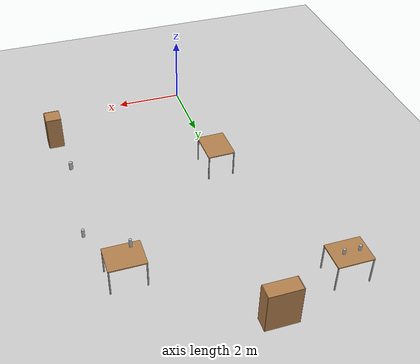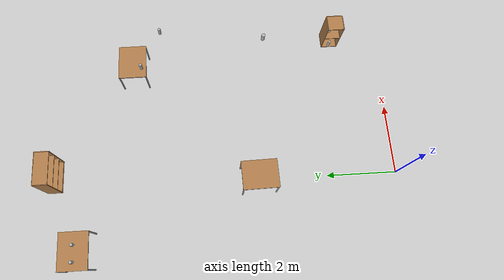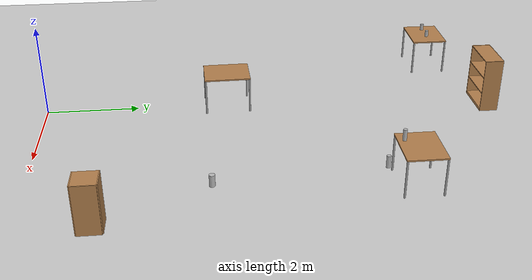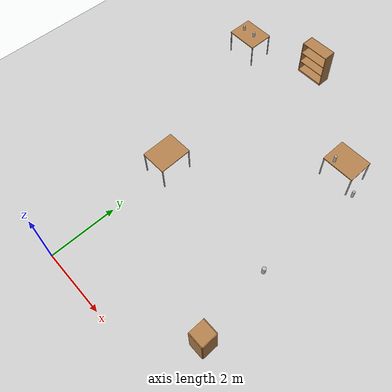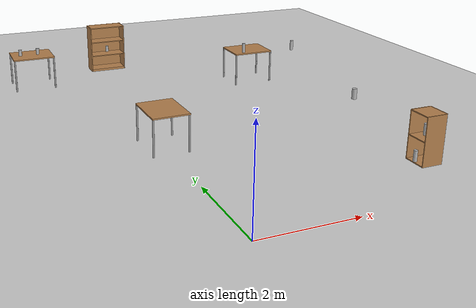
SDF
<sdf version="1.4">
 <world name="default">
  <physics type="ode">
   <gravity>0 0 -9.81</gravity>
   <ode>
    <solver><type>quick</type><iters>20</iters><sor>1</sor></solver>
    <constraints>
     <cfm>0</cfm>
     <erp>0.2</erp>
     <contact_max_correcting_vel>100</contact_max_correcting_vel>
     <contact_surface_layer>0</contact_surface_layer>
    </constraints>
   </ode>
   <real_time_update_rate>1000</real_time_update_rate>
   <max_step_size>0.001</max_step_size>
   <real_time_factor>1</real_time_factor>
  </physics>
  <light name="sun" type="directional">
   <pose>0 0 10 0 -0 0</pose>
   <diffuse>0.8 0.8 0.8 1</diffuse>
   <specular>0.2 0.2 0.2 1</specular>
   <attenuation>
    <range>1000</range>
    <constant>0.9</constant>
    <linear>0.01</linear>
    <quadratic>0.001</quadratic>
   </attenuation>
   <direction>-0.5 0.1 -0.9</direction>
  </light>
  <model name="ground_plane">
   <static>1</static>
   <link name="link">
    <collision name="collision">
     <geometry><plane><normal>0 0 1</normal><size>100 100</size></plane></geometry>
     <surface><friction><ode><mu>100</mu><mu2>50</mu2></ode></friction></surface>
    </collision>
    <visual name="visual">
     <cast_shadows>0</cast_shadows>
     <geometry><plane><normal>0 0 1</normal><size>100 100</size></plane></geometry>
     <material>
      <script><uri>file://media/materials/scripts/gazebo.material</uri><name>Gazebo/Grey</name></script>
     </material>
    </visual>
    <velocity_decay><linear>0</linear><angular>0</angular></velocity_decay>
   </link>
  </model>
  <scene><ambient>0.4 0.4 0.4 1</ambient><background>0.7 0.7 0.7 1</background><shadows>1</shadows></scene>
  <spherical_coordinates>
   <surface_model>EARTH_WGS84</surface_model>
   <latitude_deg>0</latitude_deg>
   <longitude_deg>0</longitude_deg>
   <elevation>0</elevation>
   <heading_deg>0</heading_deg>
  </spherical_coordinates>
  <model name="bookshelf">
   <static>1</static>
   <link name="link">
    <inertial><mass>1</mass></inertial>
    <collision name="back">
     <pose>0 0.005 0.6 0 -0 0</pose>
     <geometry><box><size>0.9 0.01 1.2</size></box></geometry>
    </collision>
    <visual name="visual1">
     <pose>0 0.005 0.6 0 -0 0</pose>
     <geometry><box><size>0.9 0.01 1.2</size></box></geometry>
     <material>
      <script><uri>file://media/materials/scripts/gazebo.material</uri><name>Gazebo/Wood</name></script>
     </material>
    </visual>
    <collision name="left_side">
     <pose>0.45 -0.195 0.6 0 -0 0</pose>
     <geometry><box><size>0.02 0.4 1.2</size></box></geometry>
    </collision>
    <visual name="visual2">
     <pose>0.45 -0.195 0.6 0 -0 0</pose>
     <geometry><box><size>0.02 0.4 1.2</size></box></geometry>
     <material>
      <script><uri>file://media/materials/scripts/gazebo.material</uri><name>Gazebo/Wood</name></script>
     </material>
    </visual>
    <collision name="right_side">
     <pose>-0.45 -0.195 0.6 0 -0 0</pose>
     <geometry><box><size>0.02 0.4 1.2</size></box></geometry>
    </collision>
    <visual name="visual3">
     <pose>-0.45 -0.195 0.6 0 -0 0</pose>
     <geometry><box><size>0.02 0.4 1.2</size></box></geometry>
     <material>
      <script><uri>file://media/materials/scripts/gazebo.material</uri><name>Gazebo/Wood</name></script>
     </material>
    </visual>
    <collision name="bottom">
     <pose>0 -0.195 0.03 0 -0 0</pose>
     <geometry><box><size>0.88 0.4 0.06</size></box></geometry>
    </collision>
    <visual name="visual4">
     <pose>0 -0.195 0.03 0 -0 0</pose>
     <geometry><box><size>0.88 0.4 0.06</size></box></geometry>
     <material>
      <script><uri>file://media/materials/scripts/gazebo.material</uri><name>Gazebo/Wood</name></script>
     </material>
    </visual>
    <collision name="top">
     <pose>0 -0.195 1.19 0 -0 0</pose>
     <geometry><box><size>0.88 0.4 0.02</size></box></geometry>
    </collision>
    <visual name="visual5">
     <pose>0 -0.195 1.19 0 -0 0</pose>
     <geometry><box><size>0.88 0.4 0.02</size></box></geometry>
     <material>
      <script><uri>file://media/materials/scripts/gazebo.material</uri><name>Gazebo/Wood</name></script>
     </material>
    </visual>
    <collision name="low_shelf">
     <pose>0 -0.195 0.43 0 -0 0</pose>
     <geometry><box><size>0.88 0.4 0.02</size></box></geometry>
    </collision>
    <visual name="visual6">
     <pose>0 -0.195 0.43 0 -0 0</pose>
     <geometry><box><size>0.88 0.4 0.02</size></box></geometry>
     <material>
      <script><uri>file://media/materials/scripts/gazebo.material</uri><name>Gazebo/Wood</name></script>
     </material>
    </visual>
    <collision name="high_shelf">
     <pose>0 -0.195 0.8 0 -0 0</pose>
     <geometry><box><size>0.88 0.4 0.02</size></box></geometry>
    </collision>
    <visual name="visual7">
     <pose>0 -0.195 0.8 0 -0 0</pose>
     <geometry><box><size>0.88 0.4 0.02</size></box></geometry>
     <material>
      <script><uri>file://media/materials/scripts/gazebo.material</uri><name>Gazebo/Wood</name></script>
     </material>
    </visual>
    <velocity_decay><linear>0</linear><angular>0</angular></velocity_decay>
   </link>
   <pose>0.425875 10 0 0 -0 0</pose>
  </model>
  <model name="cocacola">
   <static>0</static>
   <link name="link">
    <inertial>
     <mass>0.25</mass>
     <inertia><ixx>0</ixx><ixy>0</ixy><ixz>0</ixz><iyy>0</iyy><iyz>0</iyz><izz>0</izz></inertia>
    </inertial>
    <collision name="collision">
     <pose>0 0 0.075 -3.14159 -0 0</pose>
     <geometry><cylinder><radius>0.04</radius><length>0.15</length></cylinder></geometry>
    </collision>
    <visual name="visual">
     <pose>0 0 0.075 -3.14159 -0 0</pose>
     <geometry><cylinder><radius>0.04</radius><length>0.15</length></cylinder></geometry>
     <material>
      <script>
       <uri>model://cocacola/material/scripts</uri>
       <uri>model://cocacola/material/textures</uri>
       <name>Custom/cocacola</name>
      </script>
     </material>
    </visual>
    <velocity_decay><linear>0</linear><angular>0</angular></velocity_decay>
   </link>
   <pose>0.48988 9.95457 0.439997 2.6e-05 0.000152 0.000975</pose>
  </model>
  <model name="table">
   <static>1</static>
   <link name="link">
    <collision name="surface">
     <pose>0 0 0.8 0 -0 0</pose>
     <geometry><box><size>1 0.8 0.03</size></box></geometry>
    </collision>
    <visual name="visual1">
     <pose>0 0 0.8 0 -0 0</pose>
     <geometry><box><size>1 0.8 0.03</size></box></geometry>
     <material>
      <script><uri>file://media/materials/scripts/gazebo.material</uri><name>Gazebo/Wood</name></script>
     </material>
    </visual>
    <collision name="front_left_leg">
     <pose>0.48 0.38 0.4 0 -0 0</pose>
     <geometry><cylinder><radius>0.02</radius><length>0.8</length></cylinder></geometry>
    </collision>
    <visual name="front_left_leg">
     <pose>0.48 0.38 0.4 0 -0 0</pose>
     <geometry><cylinder><radius>0.02</radius><length>0.8</length></cylinder></geometry>
     <material>
      <script><uri>file://media/materials/scripts/gazebo.material</uri><name>Gazebo/Grey</name></script>
     </material>
    </visual>
    <collision name="front_right_leg">
     <pose>0.48 -0.38 0.4 0 -0 0</pose>
     <geometry><cylinder><radius>0.02</radius><length>0.8</length></cylinder></geometry>
    </collision>
    <visual name="front_right_leg">
     <pose>0.48 -0.38 0.4 0 -0 0</pose>
     <geometry><cylinder><radius>0.02</radius><length>0.8</length></cylinder></geometry>
     <material>
      <script><uri>file://media/materials/scripts/gazebo.material</uri><name>Gazebo/Grey</name></script>
     </material>
    </visual>
    <collision name="back_right_leg">
     <pose>-0.48 -0.38 0.4 0 -0 0</pose>
     <geometry><cylinder><radius>0.02</radius><length>0.8</length></cylinder></geometry>
    </collision>
    <visual name="back_right_leg">
     <pose>-0.48 -0.38 0.4 0 -0 0</pose>
     <geometry><cylinder><radius>0.02</radius><length>0.8</length></cylinder></geometry>
     <material>
      <script><uri>file://media/materials/scripts/gazebo.material</uri><name>Gazebo/Grey</name></script>
     </material>
    </visual>
    <collision name="back_left_leg">
     <pose>-0.48 0.38 0.4 0 -0 0</pose>
     <geometry><cylinder><radius>0.02</radius><length>0.8</length></cylinder></geometry>
    </collision>
    <visual name="back_left_leg">
     <pose>-0.48 0.38 0.4 0 -0 0</pose>
     <geometry><cylinder><radius>0.02</radius><length>0.8</length></cylinder></geometry>
     <material>
      <script><uri>file://media/materials/scripts/gazebo.material</uri><name>Gazebo/Grey</name></script>
     </material>
    </visual>
    <velocity_decay><linear>0</linear><angular>0</angular></velocity_decay>
   </link>
   <pose>-1.72096 8.99644 0 0 -0 0</pose>
  </model>
  <model name="cocacola_0">
   <static>0</static>
   <link name="link">
    <inertial>
     <mass>0.25</mass>
     <inertia><ixx>0</ixx><ixy>0</ixy><ixz>0</ixz><iyy>0</iyy><iyz>0</iyz><izz>0</izz></inertia>
    </inertial>
    <collision name="collision">
     <pose>0 0 0.075 -3.14159 -0 0</pose>
     <geometry><cylinder><radius>0.04</radius><length>0.15</length></cylinder></geometry>
    </collision>
    <visual name="visual">
     <pose>0 0 0.075 -3.14159 -0 0</pose>
     <geometry><cylinder><radius>0.04</radius><length>0.15</length></cylinder></geometry>
     <material>
      <script>
       <uri>model://cocacola/material/scripts</uri>
       <uri>model://cocacola/material/textures</uri>
       <name>Custom/cocacola</name>
      </script>
     </material>
    </visual>
    <velocity_decay><linear>0</linear><angular>0</angular></velocity_decay>
   </link>
   <pose>-1.56785 9.00019 0.814999 -7e-05 -0.000202 7.7e-05</pose>
  </model>
  <model name="cabinet">
   <static>1</static>
   <link name="cabinet_bottom_plate">
    <inertial>
     <pose>0 0 -1 0 -0 0</pose>
     <inertia><ixx>2.05</ixx><ixy>0</ixy><ixz>0</ixz><iyy>2.05</iyy><iyz>0</iyz><izz>2.05</izz></inertia>
     <mass>25</mass>
    </inertial>
    <collision name="cabinet_bottom_plate_geom">
     <pose>0 0 0.01 0 -0 0</pose>
     <geometry><box><size>0.45 0.45 0.02</size></box></geometry>
    </collision>
    <visual name="cabinet_bottom_plate_geom_visual">
     <pose>0 0 0.01 0 -0 0</pose>
     <geometry><box><size>0.45 0.45 0.02</size></box></geometry>
     <material>
      <script><uri>file://media/materials/scripts/gazebo.material</uri><name>Gazebo/Wood</name></script>
     </material>
    </visual>
    <collision name="cabinet_bottom_plate_geom_cabinet_back_plate">
     <pose>0.235 0 0.51 0 -0 0</pose>
     <geometry><box><size>0.02 0.45 1.02</size></box></geometry>
    </collision>
    <visual name="cabinet_bottom_plate_geom_cabinet_back_plate_visual">
     <pose>0.235 0 0.51 0 -0 0</pose>
     <geometry><box><size>0.02 0.45 1.02</size></box></geometry>
     <material>
      <script><uri>file://media/materials/scripts/gazebo.material</uri><name>Gazebo/Wood</name></script>
     </material>
    </visual>
    <collision name="cabinet_bottom_plate_geom_cabinet_left_plate">
     <pose>0 0.235 0.51 0 -0 0</pose>
     <geometry><box><size>0.45 0.02 1.02</size></box></geometry>
    </collision>
    <visual name="cabinet_bottom_plate_geom_cabinet_left_plate_visual">
     <pose>0 0.235 0.51 0 -0 0</pose>
     <geometry><box><size>0.45 0.02 1.02</size></box></geometry>
     <material>
      <script><uri>file://media/materials/scripts/gazebo.material</uri><name>Gazebo/Wood</name></script>
     </material>
    </visual>
    <collision name="cabinet_bottom_plate_geom_cabinet_middle_plate">
     <pose>0 0 0.51 0 -0 0</pose>
     <geometry><box><size>0.45 0.45 0.02</size></box></geometry>
    </collision>
    <visual name="cabinet_bottom_plate_geom_cabinet_middle_plate_visual">
     <pose>0 0 0.51 0 -0 0</pose>
     <geometry><box><size>0.45 0.45 0.02</size></box></geometry>
     <material>
      <script><uri>file://media/materials/scripts/gazebo.material</uri><name>Gazebo/Wood</name></script>
     </material>
    </visual>
    <collision name="cabinet_bottom_plate_geom_cabinet_right_plate">
     <pose>0 -0.235 0.51 0 -0 0</pose>
     <geometry><box><size>0.45 0.02 1.02</size></box></geometry>
    </collision>
    <visual name="cabinet_bottom_plate_geom_cabinet_right_plate_visual">
     <pose>0 -0.235 0.51 0 -0 0</pose>
     <geometry><box><size>0.45 0.02 1.02</size></box></geometry>
     <material>
      <script><uri>file://media/materials/scripts/gazebo.material</uri><name>Gazebo/Wood</name></script>
     </material>
    </visual>
    <collision name="cabinet_bottom_plate_geom_cabinet_top_plate">
     <pose>0 0 1.01 0 -0 0</pose>
     <geometry><box><size>0.45 0.45 0.02</size></box></geometry>
    </collision>
    <visual name="cabinet_bottom_plate_geom_cabinet_top_plate_visual">
     <pose>0 0 1.01 0 -0 0</pose>
     <geometry><box><size>0.45 0.45 0.02</size></box></geometry>
     <material>
      <script><uri>file://media/materials/scripts/gazebo.material</uri><name>Gazebo/Wood</name></script>
     </material>
    </visual>
    <velocity_decay><linear>0</linear><angular>0</angular></velocity_decay>
   </link>
   <pose>4.37697 1.40247 0 0 -0 0</pose>
  </model>
  <model name="beer">
   <link name="link">
    <pose>0 0 0.115 0 -0 0</pose>
    <inertial>
     <mass>0.39</mass>
     <inertia><ixx>0.00058</ixx><ixy>0</ixy><ixz>0</ixz><iyy>0.00058</iyy><iyz>0</iyz><izz>0.00019</izz></inertia>
    </inertial>
    <collision name="collision">
     <geometry><cylinder><radius>0.055</radius><length>0.23</length></cylinder></geometry>
    </collision>
    <visual name="visual">
     <geometry><cylinder><radius>0.055</radius><length>0.23</length></cylinder></geometry>
     <material>
      <script>
       <uri>model://beer/materials/scripts</uri>
       <uri>model://beer/materials/textures</uri>
       <name>Beer/Diffuse</name>
      </script>
     </material>
    </visual>
    <velocity_decay><linear>0</linear><angular>0</angular></velocity_decay>
   </link>
   <pose>4.21054 3.54934 0.60999 9e-06 1e-06 -0.002444</pose>
   <static>0</static>
  </model>
  <model name="pringles">
   <static>0</static>
   <link name="link">
    <inertial>
     <mass>0.25</mass>
     <inertia><ixx>0</ixx><ixy>0</ixy><ixz>0</ixz><iyy>0</iyy><iyz>0</iyz><izz>0</izz></inertia>
    </inertial>
    <collision name="collision">
     <geometry><cylinder><radius>0.04</radius><length>0.235</length></cylinder></geometry>
    </collision>
    <visual name="visual">
     <geometry><cylinder><radius>0.04</radius><length>0.235</length></cylinder></geometry>
     <material>
      <script>
       <uri>model://pringles/material/scripts</uri>
       <uri>model://pringles/material/textures</uri>
       <name>Custom/pringles</name>
      </script>
     </material>
    </visual>
    <velocity_decay><linear>0</linear><angular>0</angular></velocity_decay>
   </link>
   <pose>4.40214 1.46653 0.637499 -3e-05 -0.000214 -0.000213</pose>
  </model>
  <model name="pringles2">
   <static>0</static>
   <link name="link">
    <inertial>
     <mass>0.25</mass>
     <inertia><ixx>0</ixx><ixy>0</ixy><ixz>0</ixz><iyy>0</iyy><iyz>0</iyz><izz>0</izz></inertia>
    </inertial>
    <collision name="collision">
     <pose>0 0 0.12 -3.14159 -0 0</pose>
     <geometry><cylinder><radius>0.04</radius><length>0.235</length></cylinder></geometry>
    </collision>
    <visual name="visual">
     <pose>0 0 0.12 -3.14159 -0 0</pose>
     <geometry><cylinder><radius>0.04</radius><length>0.235</length></cylinder></geometry>
     <material>
      <script>
       <uri>model://pringles2/material/scripts</uri>
       <uri>model://pringles2/material/textures</uri>
       <name>Custom/pringles2</name>
      </script>
     </material>
    </visual>
    <velocity_decay><linear>0</linear><angular>0</angular></velocity_decay>
   </link>
   <pose>4.19009 1.42646 0.017499 0.000157 0.000162 5e-06</pose>
  </model>
  <model name="table_0">
   <static>1</static>
   <link name="link">
    <collision name="surface">
     <pose>0 0 0.8 0 -0 0</pose>
     <geometry><box><size>1 0.8 0.03</size></box></geometry>
    </collision>
    <visual name="visual1">
     <pose>0 0 0.8 0 -0 0</pose>
     <geometry><box><size>1 0.8 0.03</size></box></geometry>
     <material>
      <script><uri>file://media/materials/scripts/gazebo.material</uri><name>Gazebo/Wood</name></script>
     </material>
    </visual>
    <collision name="front_left_leg">
     <pose>0.48 0.38 0.4 0 -0 0</pose>
     <geometry><cylinder><radius>0.02</radius><length>0.8</length></cylinder></geometry>
    </collision>
    <visual name="front_left_leg">
     <pose>0.48 0.38 0.4 0 -0 0</pose>
     <geometry><cylinder><radius>0.02</radius><length>0.8</length></cylinder></geometry>
     <material>
      <script><uri>file://media/materials/scripts/gazebo.material</uri><name>Gazebo/Grey</name></script>
     </material>
    </visual>
    <collision name="front_right_leg">
     <pose>0.48 -0.38 0.4 0 -0 0</pose>
     <geometry><cylinder><radius>0.02</radius><length>0.8</length></cylinder></geometry>
    </collision>
    <visual name="front_right_leg">
     <pose>0.48 -0.38 0.4 0 -0 0</pose>
     <geometry><cylinder><radius>0.02</radius><length>0.8</length></cylinder></geometry>
     <material>
      <script><uri>file://media/materials/scripts/gazebo.material</uri><name>Gazebo/Grey</name></script>
     </material>
    </visual>
    <collision name="back_right_leg">
     <pose>-0.48 -0.38 0.4 0 -0 0</pose>
     <geometry><cylinder><radius>0.02</radius><length>0.8</length></cylinder></geometry>
    </collision>
    <visual name="back_right_leg">
     <pose>-0.48 -0.38 0.4 0 -0 0</pose>
     <geometry><cylinder><radius>0.02</radius><length>0.8</length></cylinder></geometry>
     <material>
      <script><uri>file://media/materials/scripts/gazebo.material</uri><name>Gazebo/Grey</name></script>
     </material>
    </visual>
    <collision name="back_left_leg">
     <pose>-0.48 0.38 0.4 0 -0 0</pose>
     <geometry><cylinder><radius>0.02</radius><length>0.8</length></cylinder></geometry>
    </collision>
    <visual name="back_left_leg">
     <pose>-0.48 0.38 0.4 0 -0 0</pose>
     <geometry><cylinder><radius>0.02</radius><length>0.8</length></cylinder></geometry>
     <material>
      <script><uri>file://media/materials/scripts/gazebo.material</uri><name>Gazebo/Grey</name></script>
     </material>
    </visual>
    <velocity_decay><linear>0</linear><angular>0</angular></velocity_decay>
   </link>
   <pose>3.57145 7.45708 0 0 -0 0</pose>
  </model>
  <model name="table_1">
   <static>1</static>
   <link name="link">
    <collision name="surface">
     <pose>0 0 0.8 0 -0 0</pose>
     <geometry><box><size>1 0.8 0.03</size></box></geometry>
    </collision>
    <visual name="visual1">
     <pose>0 0 0.8 0 -0 0</pose>
     <geometry><box><size>1 0.8 0.03</size></box></geometry>
     <material>
      <script><uri>file://media/materials/scripts/gazebo.material</uri><name>Gazebo/Wood</name></script>
     </material>
    </visual>
    <collision name="front_left_leg">
     <pose>0.48 0.38 0.4 0 -0 0</pose>
     <geometry><cylinder><radius>0.02</radius><length>0.8</length></cylinder></geometry>
    </collision>
    <visual name="front_left_leg">
     <pose>0.48 0.38 0.4 0 -0 0</pose>
     <geometry><cylinder><radius>0.02</radius><length>0.8</length></cylinder></geometry>
     <material>
      <script><uri>file://media/materials/scripts/gazebo.material</uri><name>Gazebo/Grey</name></script>
     </material>
    </visual>
    <collision name="front_right_leg">
     <pose>0.48 -0.38 0.4 0 -0 0</pose>
     <geometry><cylinder><radius>0.02</radius><length>0.8</length></cylinder></geometry>
    </collision>
    <visual name="front_right_leg">
     <pose>0.48 -0.38 0.4 0 -0 0</pose>
     <geometry><cylinder><radius>0.02</radius><length>0.8</length></cylinder></geometry>
     <material>
      <script><uri>file://media/materials/scripts/gazebo.material</uri><name>Gazebo/Grey</name></script>
     </material>
    </visual>
    <collision name="back_right_leg">
     <pose>-0.48 -0.38 0.4 0 -0 0</pose>
     <geometry><cylinder><radius>0.02</radius><length>0.8</length></cylinder></geometry>
    </collision>
    <visual name="back_right_leg">
     <pose>-0.48 -0.38 0.4 0 -0 0</pose>
     <geometry><cylinder><radius>0.02</radius><length>0.8</length></cylinder></geometry>
     <material>
      <script><uri>file://media/materials/scripts/gazebo.material</uri><name>Gazebo/Grey</name></script>
     </material>
    </visual>
    <collision name="back_left_leg">
     <pose>-0.48 0.38 0.4 0 -0 0</pose>
     <geometry><cylinder><radius>0.02</radius><length>0.8</length></cylinder></geometry>
    </collision>
    <visual name="back_left_leg">
     <pose>-0.48 0.38 0.4 0 -0 0</pose>
     <geometry><cylinder><radius>0.02</radius><length>0.8</length></cylinder></geometry>
     <material>
      <script><uri>file://media/materials/scripts/gazebo.material</uri><name>Gazebo/Grey</name></script>
     </material>
    </visual>
    <velocity_decay><linear>0</linear><angular>0</angular></velocity_decay>
   </link>
   <pose>0 4 0 0 -0 1.59089</pose>
  </model>
  <model name="cocacola_1">
   <static>0</static>
   <link name="link">
    <inertial>
     <mass>0.25</mass>
     <inertia><ixx>0</ixx><ixy>0</ixy><ixz>0</ixz><iyy>0</iyy><iyz>0</iyz><izz>0</izz></inertia>
    </inertial>
    <collision name="collision">
     <pose>0 0 0.075 -3.14159 -0 0</pose>
     <geometry><cylinder><radius>0.04</radius><length>0.15</length></cylinder></geometry>
    </collision>
    <visual name="visual">
     <pose>0 0 0.075 -3.14159 -0 0</pose>
     <geometry><cylinder><radius>0.04</radius><length>0.15</length></cylinder></geometry>
     <material>
      <script>
       <uri>model://cocacola/material/scripts</uri>
       <uri>model://cocacola/material/textures</uri>
       <name>Custom/cocacola</name>
      </script>
     </material>
    </visual>
    <velocity_decay><linear>0</linear><angular>0</angular></velocity_decay>
   </link>
   <pose>-2.00001 9.00001 0.814998 0.000148 0.000111 -1.1e-05</pose>
  </model>
  <model name="pringles_0">
   <static>0</static>
   <link name="link">
    <inertial>
     <mass>0.25</mass>
     <inertia><ixx>0</ixx><ixy>0</ixy><ixz>0</ixz><iyy>0</iyy><iyz>0</iyz><izz>0</izz></inertia>
    </inertial>
    <collision name="collision">
     <geometry><cylinder><radius>0.04</radius><length>0.235</length></cylinder></geometry>
    </collision>
    <visual name="visual">
     <geometry><cylinder><radius>0.04</radius><length>0.235</length></cylinder></geometry>
     <material>
      <script>
       <uri>model://pringles/material/scripts</uri>
       <uri>model://pringles/material/textures</uri>
       <name>Custom/pringles</name>
      </script>
     </material>
    </visual>
    <velocity_decay><linear>0</linear><angular>0</angular></velocity_decay>
   </link>
   <pose>3.344 7.19185 0.932501 -0.000277 -3e-05 -2.8e-05</pose>
  </model>
  <model name="pringles2_0">
   <static>0</static>
   <link name="link">
    <inertial>
     <mass>0.25</mass>
     <inertia><ixx>0</ixx><ixy>0</ixy><ixz>0</ixz><iyy>0</iyy><iyz>0</iyz><izz>0</izz></inertia>
    </inertial>
    <collision name="collision">
     <pose>0 0 0.12 -3.14159 -0 0</pose>
     <geometry><cylinder><radius>0.04</radius><length>0.235</length></cylinder></geometry>
    </collision>
    <visual name="visual">
     <pose>0 0 0.12 -3.14159 -0 0</pose>
     <geometry><cylinder><radius>0.04</radius><length>0.235</length></cylinder></geometry>
     <material>
      <script>
       <uri>model://pringles2/material/scripts</uri>
       <uri>model://pringles2/material/textures</uri>
       <name>Custom/pringles2</name>
      </script>
     </material>
    </visual>
    <velocity_decay><linear>0</linear><angular>0</angular></velocity_decay>
   </link>
   <pose>4.40162 6.61854 0.917533 1.2e-05 0.000831 -0.000169</pose>
  </model>
 </world>
</sdf>
